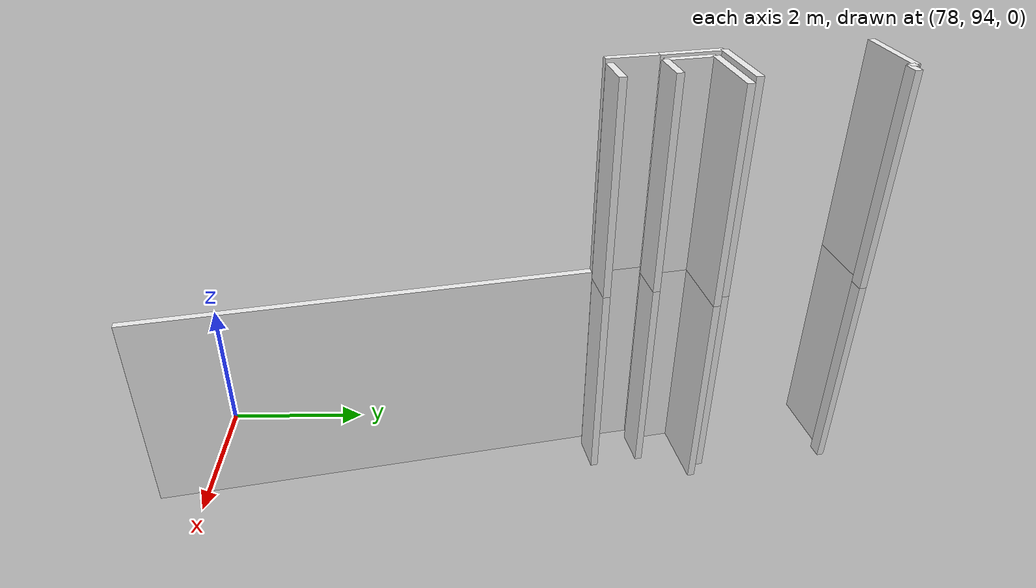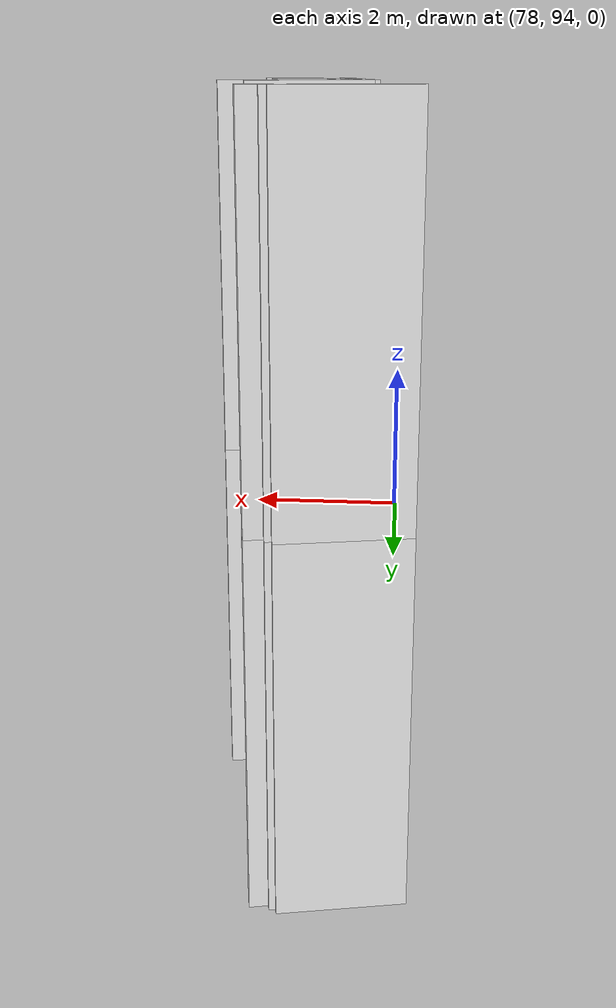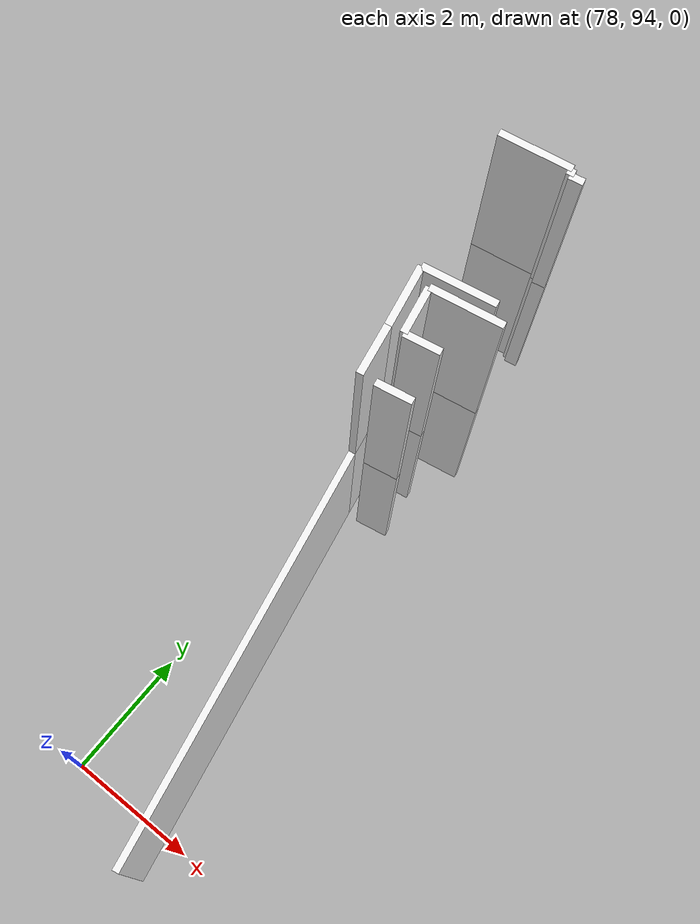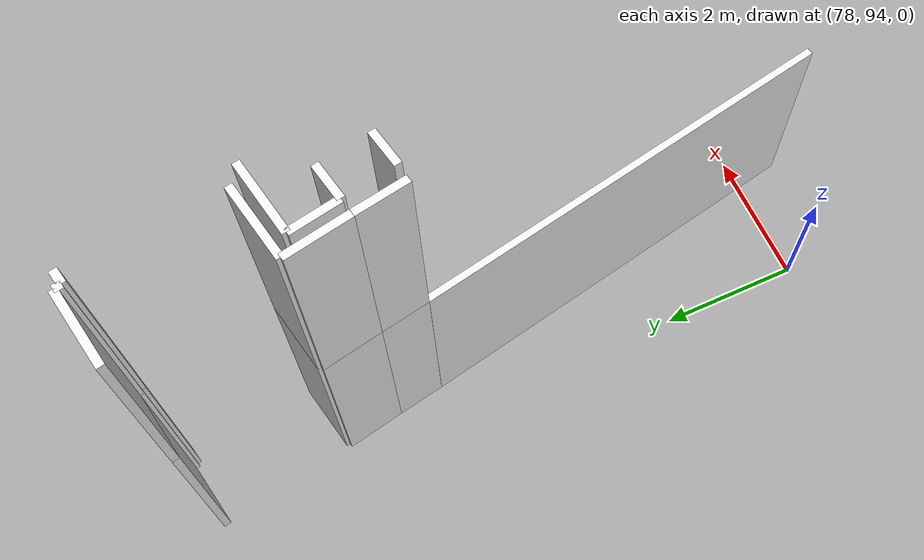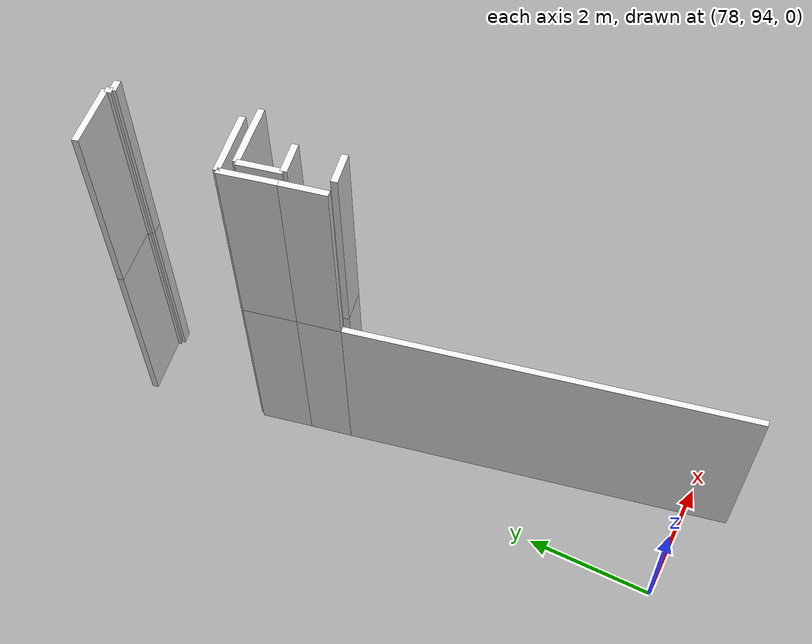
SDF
<sdf version="1.6">
 <world name="default">
  <model name="wall_78.9_100.9_1.5">
   <static>true</static>
   <pose>78.92999999999302 100.94500000006519 1.5 0 0 -2.950090935171577</pose>
   <link name="link">
    <visual name="visual">
     <geometry><box><size>0.9982484660355146 0.1 3</size></box></geometry>
     <material>
      <script><uri>file://media/materials/scripts/gazebo.material</uri><name>Gazebo/White</name></script>
     </material>
    </visual>
    <collision name="collision"><geometry><box><size>0.9982484660355146 0.1 3</size></box></geometry></collision>
   </link>
  </model>
  <model name="wall_78.5_100.5_1.5">
   <static>true</static>
   <pose>78.50500000000466 100.53000000002794 1.5 0 0 -1.3703977730017727</pose>
   <link name="link">
    <visual name="visual">
     <geometry><box><size>0.6530696748189306 0.1 3</size></box></geometry>
     <material>
      <script><uri>file://media/materials/scripts/gazebo.material</uri><name>Gazebo/White</name></script>
     </material>
    </visual>
    <collision name="collision"><geometry><box><size>0.6530696748189306 0.1 3</size></box></geometry></collision>
   </link>
  </model>
  <model name="wall_78.8_100.3_1.5">
   <static>true</static>
   <pose>78.81500000000233 100.26000000000931 1.5 0 0 0.2013171085608308</pose>
   <link name="link">
    <visual name="visual">
     <geometry><box><size>0.5000999900114971 0.1 3</size></box></geometry>
     <material>
      <script><uri>file://media/materials/scripts/gazebo.material</uri><name>Gazebo/White</name></script>
     </material>
    </visual>
    <collision name="collision"><geometry><box><size>0.5000999900114971 0.1 3</size></box></geometry></collision>
   </link>
  </model>
  <model name="wall_78.9_99.6_1.5">
   <static>true</static>
   <pose>78.94500000000698 99.57999999984168 1.5 0 0 -2.9402755450289626</pose>
   <link name="link">
    <visual name="visual">
     <geometry><box><size>0.5000999900114971 0.1 3</size></box></geometry>
     <material>
      <script><uri>file://media/materials/scripts/gazebo.material</uri><name>Gazebo/White</name></script>
     </material>
    </visual>
    <collision name="collision"><geometry><box><size>0.5000999900114971 0.1 3</size></box></geometry></collision>
   </link>
  </model>
  <model name="wall_78.3_103.1_1.5">
   <static>true</static>
   <pose>78.30999999999767 103.05499999993481 1.5 0 0 0.19150171841821614</pose>
   <link name="link">
    <visual name="visual">
     <geometry><box><size>0.9982484660355146 0.1 3</size></box></geometry>
     <material>
      <script><uri>file://media/materials/scripts/gazebo.material</uri><name>Gazebo/White</name></script>
     </material>
    </visual>
    <collision name="collision"><geometry><box><size>0.9982484660355146 0.1 3</size></box></geometry></collision>
   </link>
  </model>
  <model name="wall_78.8_103.1_1.5">
   <static>true</static>
   <pose>78.80999999999767 103.0999999998603 1.5 0 0 -1.373400766945016</pose>
   <link name="link">
    <visual name="visual">
     <geometry><box><size>0.10198039036683233 0.1 3</size></box></geometry>
     <material>
      <script><uri>file://media/materials/scripts/gazebo.material</uri><name>Gazebo/White</name></script>
     </material>
    </visual>
    <collision name="collision"><geometry><box><size>0.10198039036683233 0.1 3</size></box></geometry></collision>
   </link>
  </model>
  <model name="wall_78.9_103.1_1.5">
   <static>true</static>
   <pose>78.91500000000815 103.06999999983236 1.5 0 0 0.20749622662047904</pose>
   <link name="link">
    <visual name="visual">
     <geometry><box><size>0.19416487839942884 0.1 3</size></box></geometry>
     <material>
      <script><uri>file://media/materials/scripts/gazebo.material</uri><name>Gazebo/White</name></script>
     </material>
    </visual>
    <collision name="collision"><geometry><box><size>0.19416487839942884 0.1 3</size></box></geometry></collision>
   </link>
  </model>
  <model name="wall_78.7_101.1_1.5">
   <static>true</static>
   <pose>78.69500000000698 101.10000000009313 1.5 0 0 -2.942255348424875</pose>
   <link name="link">
    <visual name="visual">
     <geometry><box><size>1.0100000000277551 0.1 3</size></box></geometry>
     <material>
      <script><uri>file://media/materials/scripts/gazebo.material</uri><name>Gazebo/White</name></script>
     </material>
    </visual>
    <collision name="collision"><geometry><box><size>1.0100000000277551 0.1 3</size></box></geometry></collision>
   </link>
  </model>
  <model name="wall_78.3_100.6_1.5">
   <static>true</static>
   <pose>78.28500000000349 100.58499999996275 1.5 0 0 -1.3687711704277956</pose>
   <link name="link">
    <visual name="visual">
     <geometry><box><size>0.8472307832687256 0.1 3</size></box></geometry>
     <material>
      <script><uri>file://media/materials/scripts/gazebo.material</uri><name>Gazebo/White</name></script>
     </material>
    </visual>
    <collision name="collision"><geometry><box><size>0.8472307832687256 0.1 3</size></box></geometry></collision>
   </link>
  </model>
  <model name="wall_78.4_99.8_1.5">
   <static>true</static>
   <pose>78.43499999999767 99.8300000000745 1.5 0 0 -1.3818991458298349</pose>
   <link name="link">
    <visual name="visual">
     <geometry><box><size>0.6923149569349915 0.1 3</size></box></geometry>
     <material>
      <script><uri>file://media/materials/scripts/gazebo.material</uri><name>Gazebo/White</name></script>
     </material>
    </visual>
    <collision name="collision"><geometry><box><size>0.6923149569349915 0.1 3</size></box></geometry></collision>
   </link>
  </model>
  <model name="wall_79.1_96.4_1.5">
   <static>true</static>
   <pose>79.11999999999534 96.41000000014901 1.5 0 0 -1.3721523281490677</pose>
   <link name="link">
    <visual name="visual">
     <geometry><box><size>6.283565866752152 0.1 3</size></box></geometry>
     <material>
      <script><uri>file://media/materials/scripts/gazebo.material</uri><name>Gazebo/White</name></script>
     </material>
    </visual>
    <collision name="collision"><geometry><box><size>6.283565866752152 0.1 3</size></box></geometry></collision>
   </link>
  </model>
  <model name="wall_78.9_100.9_4.5">
   <static>true</static>
   <pose>78.92999999999302 100.94500000006519 4.5 0 0 -2.950090935171577</pose>
   <link name="link">
    <visual name="visual">
     <geometry><box><size>0.9982484660355146 0.1 3</size></box></geometry>
     <material>
      <script><uri>file://media/materials/scripts/gazebo.material</uri><name>Gazebo/White</name></script>
     </material>
    </visual>
    <collision name="collision"><geometry><box><size>0.9982484660355146 0.1 3</size></box></geometry></collision>
   </link>
  </model>
  <model name="wall_78.5_100.5_4.5">
   <static>true</static>
   <pose>78.50500000000466 100.53000000002794 4.5 0 0 -1.3703977730017727</pose>
   <link name="link">
    <visual name="visual">
     <geometry><box><size>0.6530696748189306 0.1 3</size></box></geometry>
     <material>
      <script><uri>file://media/materials/scripts/gazebo.material</uri><name>Gazebo/White</name></script>
     </material>
    </visual>
    <collision name="collision"><geometry><box><size>0.6530696748189306 0.1 3</size></box></geometry></collision>
   </link>
  </model>
  <model name="wall_78.8_100.3_4.5">
   <static>true</static>
   <pose>78.81500000000233 100.26000000000931 4.5 0 0 0.2013171085608308</pose>
   <link name="link">
    <visual name="visual">
     <geometry><box><size>0.5000999900114971 0.1 3</size></box></geometry>
     <material>
      <script><uri>file://media/materials/scripts/gazebo.material</uri><name>Gazebo/White</name></script>
     </material>
    </visual>
    <collision name="collision"><geometry><box><size>0.5000999900114971 0.1 3</size></box></geometry></collision>
   </link>
  </model>
  <model name="wall_78.9_99.6_4.5">
   <static>true</static>
   <pose>78.94500000000698 99.57999999984168 4.5 0 0 -2.9402755450289626</pose>
   <link name="link">
    <visual name="visual">
     <geometry><box><size>0.5000999900114971 0.1 3</size></box></geometry>
     <material>
      <script><uri>file://media/materials/scripts/gazebo.material</uri><name>Gazebo/White</name></script>
     </material>
    </visual>
    <collision name="collision"><geometry><box><size>0.5000999900114971 0.1 3</size></box></geometry></collision>
   </link>
  </model>
  <model name="wall_78.3_103.1_4.5">
   <static>true</static>
   <pose>78.30999999999767 103.05499999993481 4.5 0 0 0.19150171841821614</pose>
   <link name="link">
    <visual name="visual">
     <geometry><box><size>0.9982484660355146 0.1 3</size></box></geometry>
     <material>
      <script><uri>file://media/materials/scripts/gazebo.material</uri><name>Gazebo/White</name></script>
     </material>
    </visual>
    <collision name="collision"><geometry><box><size>0.9982484660355146 0.1 3</size></box></geometry></collision>
   </link>
  </model>
  <model name="wall_78.8_103.1_4.5">
   <static>true</static>
   <pose>78.80999999999767 103.0999999998603 4.5 0 0 -1.373400766945016</pose>
   <link name="link">
    <visual name="visual">
     <geometry><box><size>0.10198039036683233 0.1 3</size></box></geometry>
     <material>
      <script><uri>file://media/materials/scripts/gazebo.material</uri><name>Gazebo/White</name></script>
     </material>
    </visual>
    <collision name="collision"><geometry><box><size>0.10198039036683233 0.1 3</size></box></geometry></collision>
   </link>
  </model>
  <model name="wall_78.9_103.1_4.5">
   <static>true</static>
   <pose>78.91500000000815 103.06999999983236 4.5 0 0 0.20749622662047904</pose>
   <link name="link">
    <visual name="visual">
     <geometry><box><size>0.19416487839942884 0.1 3</size></box></geometry>
     <material>
      <script><uri>file://media/materials/scripts/gazebo.material</uri><name>Gazebo/White</name></script>
     </material>
    </visual>
    <collision name="collision"><geometry><box><size>0.19416487839942884 0.1 3</size></box></geometry></collision>
   </link>
  </model>
  <model name="wall_78.7_101.1_4.5">
   <static>true</static>
   <pose>78.69500000000698 101.10000000009313 4.5 0 0 -2.942255348424875</pose>
   <link name="link">
    <visual name="visual">
     <geometry><box><size>1.0100000000277551 0.1 3</size></box></geometry>
     <material>
      <script><uri>file://media/materials/scripts/gazebo.material</uri><name>Gazebo/White</name></script>
     </material>
    </visual>
    <collision name="collision"><geometry><box><size>1.0100000000277551 0.1 3</size></box></geometry></collision>
   </link>
  </model>
  <model name="wall_78.3_100.6_4.5">
   <static>true</static>
   <pose>78.28500000000349 100.58499999996275 4.5 0 0 -1.3687711704277956</pose>
   <link name="link">
    <visual name="visual">
     <geometry><box><size>0.8472307832687256 0.1 3</size></box></geometry>
     <material>
      <script><uri>file://media/materials/scripts/gazebo.material</uri><name>Gazebo/White</name></script>
     </material>
    </visual>
    <collision name="collision"><geometry><box><size>0.8472307832687256 0.1 3</size></box></geometry></collision>
   </link>
  </model>
  <model name="wall_78.4_99.8_4.5">
   <static>true</static>
   <pose>78.43499999999767 99.8300000000745 4.5 0 0 -1.3818991458298349</pose>
   <link name="link">
    <visual name="visual">
     <geometry><box><size>0.6923149569349915 0.1 3</size></box></geometry>
     <material>
      <script><uri>file://media/materials/scripts/gazebo.material</uri><name>Gazebo/White</name></script>
     </material>
    </visual>
    <collision name="collision"><geometry><box><size>0.6923149569349915 0.1 3</size></box></geometry></collision>
   </link>
  </model>
 </world>
</sdf>
